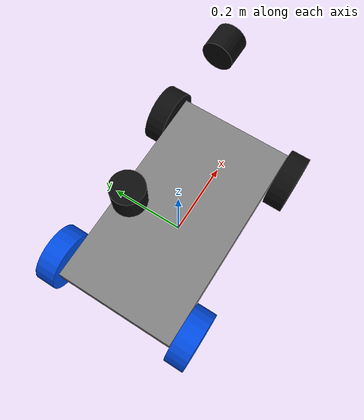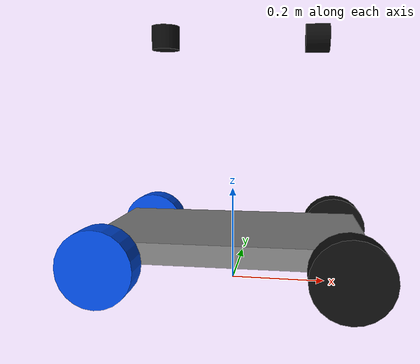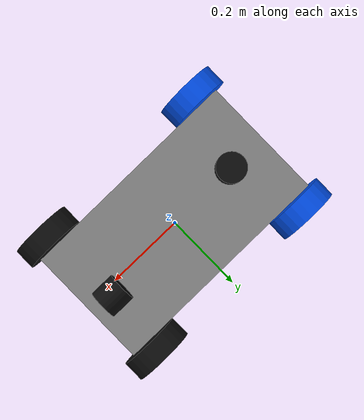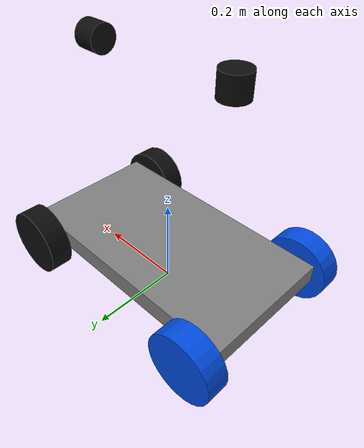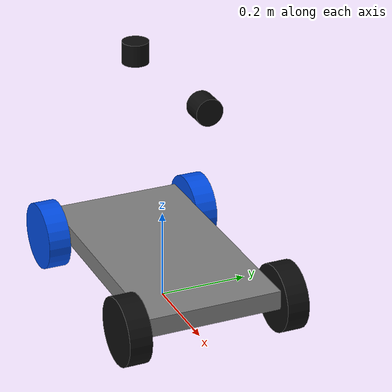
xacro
<?xml version="1.0"?>
<robot xmlns:xacro="http://www.ros.org/wiki/xacro" name="sage">
  <!-- === Dimensions === -->
  <xacro:property name="base_width" value="0.3048"/>
  <xacro:property name="base_length" value="0.558"/>
  <xacro:property name="base_thickness" value="0.043"/>

  <xacro:property name="wheel_radius" value="0.0762"/>
  <xacro:property name="front_wheel_radius" value="0.0762"/>
  <xacro:property name="wheel_thickness" value="0.0508"/>
  <xacro:property name="wheel_x_from_back" value="0.04608"/>
  <xacro:property name="front_wheel_x_from_front" value="0.044718"/>
  <xacro:property name="lidar_height" value="0.5268"/>

  <xacro:property name="base_z" value="0.0522"/>
  <xacro:property name="half_len" value="${base_length/2.0}"/>
  <xacro:property name="half_wid" value="${base_width/2.0}"/>
  <xacro:property name="track_width" value="0.3612"/>
  <xacro:property name="half_track" value="${track_width / 2.0}"/>
  <xacro:property name="rear_wheel_x" value="${-half_len + wheel_x_from_back}"/>

  <!-- === Materials === -->
  <material name="grey"><color rgba="0.5 0.5 0.5 1.0"/></material>
  <material name="black"><color rgba="0.05 0.05 0.05 1.0"/></material>
  <material name="blue"><color rgba="0.0 0.3 0.9 1.0"/></material>

  <!-- === Base link === -->
  <link name="base_link">
    <inertial>
      <origin xyz="0 0 ${base_z}" rpy="0 0 0"/>
      <mass value="5.0"/>
      <inertia ixx="0.2" ixy="0" ixz="0" iyy="0.2" iyz="0" izz="0.2"/>
    </inertial>
    <visual>
      <origin xyz="0 0 ${base_z + base_thickness}" rpy="0 0 0"/>
      <geometry>
        <box size="${base_length} ${base_width} ${base_thickness}"/>
      </geometry>
      <material name="grey"/>
    </visual>
    <collision>
      <origin xyz="0 0 ${base_z + base_thickness}" rpy="0 0 0"/>
      <geometry>
        <box size="${base_length} ${base_width} ${base_thickness}"/>
      </geometry>
    </collision>
  </link>

  <!-- === Drive Wheels === -->
  <xacro:macro name="wheel" params="name y">
    <link name="${name}">
      <visual>
        <origin xyz="0 0 0" rpy="${pi/2} 0 0"/>
        <geometry>
          <cylinder radius="${wheel_radius}" length="${wheel_thickness}"/>
        </geometry>
        <material name="blue"/>
      </visual>
      <collision>
        <origin xyz="0 0 0" rpy="${pi/2} 0 0"/>
        <geometry>
          <cylinder radius="${wheel_radius}" length="${wheel_thickness}"/>
        </geometry>
      </collision>
      <inertial>
        <mass value="0.5"/>
        <inertia ixx="0.001" ixy="0" ixz="0" iyy="0.001" iyz="0" izz="0.001"/>
      </inertial>
    </link>

    <joint name="${name}_joint" type="continuous">
      <parent link="base_link"/>
      <child link="${name}"/>
      <origin xyz="${rear_wheel_x} ${y} ${wheel_radius}" rpy="0 0 0"/>
      <axis xyz="0 1 0"/>
    </joint>
  </xacro:macro>

  <xacro:wheel name="left_wheel" y="${half_track}"/>
  <xacro:wheel name="right_wheel" y="${-half_track}"/>

  <!-- === Passive Front Support Wheels === -->
  <xacro:macro name="front_wheel" params="name y">
    <link name="${name}">
      <visual>
        <origin xyz="0 0 0" rpy="${pi/2} 0 0"/>
        <geometry>
          <cylinder radius="${front_wheel_radius}" length="${wheel_thickness}"/>
        </geometry>
        <material name="black"/>
      </visual>
      <collision>
        <origin xyz="0 0 0" rpy="${pi/2} 0 0"/>
        <geometry>
          <cylinder radius="${front_wheel_radius}" length="${wheel_thickness}"/>
        </geometry>
      </collision>
      <inertial>
        <mass value="0.2"/>
        <inertia ixx="0.0005" ixy="0" ixz="0" iyy="0.0005" iyz="0" izz="0.0005"/>
      </inertial>
    </link>

    <joint name="${name}_joint" type="fixed">
      <parent link="base_link"/>
      <child link="${name}"/>
      <origin xyz="${half_len - front_wheel_x_from_front} ${y} ${wheel_radius}" rpy="0 0 0"/>
    </joint>
  </xacro:macro>

  <xacro:front_wheel name="front_left_wheel" y="${half_track}"/>
  <xacro:front_wheel name="front_right_wheel" y="${-half_track}"/>

  <!-- === LiDAR Link === -->
  <link name="lidar_link">
    <visual>
      <origin xyz="0 0 0" rpy="0 0 0"/>
      <geometry>
        <cylinder radius="0.03" length="0.05"/>
      </geometry>
      <material name="black"/>
    </visual>
  </link>

  <joint name="lidar_mount" type="fixed">
    <parent link="base_link"/>
    <child link="lidar_link"/>
    <origin xyz="-0.1466 0 ${lidar_height}" rpy="0 0 0"/> <!-- LIDAR mounted 180 degrees rotated I think. Its moved -146.6mm from center -->
  </joint>

  <!-- === IMU Link === -->
  <link name="imu_link">
    <visual>
      <origin xyz="0 0 0" rpy="0 0 0"/>
      <geometry>
        <box size="0.03 0.03 0.01"/> <!-- Example dimensions for the IMU -->
      </geometry>
      <material name="blue"/>
    </visual>
    <collision>
      <origin xyz="0 0 0" rpy="0 0 0"/>
      <geometry>
        <box size="0.03 0.03 0.01"/>
      </geometry>
    </collision>
    <inertial>
      <mass value="0.05"/> <!-- Example mass for the IMU -->
      <inertia ixx="0.0001" ixy="0" ixz="0" iyy="0.0001" iyz="0" izz="0.0001"/>
    </inertial>
  </link>

  <joint name="imu_mount" type="fixed">
    <parent link="base_link"/>
    <child link="imu_link"/>
    <origin xyz="0.09756 -0.102 ${base_z + base_thickness}" rpy="0 ${pi/2} 0"/> <!-- Corrected z-coordinate -->
  </joint>

<!-- === Camera Link === -->
  <link name="camera_link">
    <visual>
      <origin xyz="0 0 0" rpy="0 0 0"/>
      <geometry>
        <cylinder radius="0.03" length="0.05"/>
      </geometry>
      <material name="black"/>
    </visual>
  </link>

  <joint name="camera_joint" type="fixed">
    <parent link="base_link"/>
    <child link="camera_link"/>
    <origin xyz="0.179 0.017 0.523" rpy="-1.5707963 0 -1.5707963"/>
  </joint>

  <!-- === Nav2 footprint (optional) === -->
  <link name="base_footprint"/>
  <joint name="base_link_to_footprint" type="fixed">
    <parent link="base_link"/>
    <child link="base_footprint"/>
    <origin xyz="0 0 0" rpy="0 0 0"/>
  </joint>
</robot>
